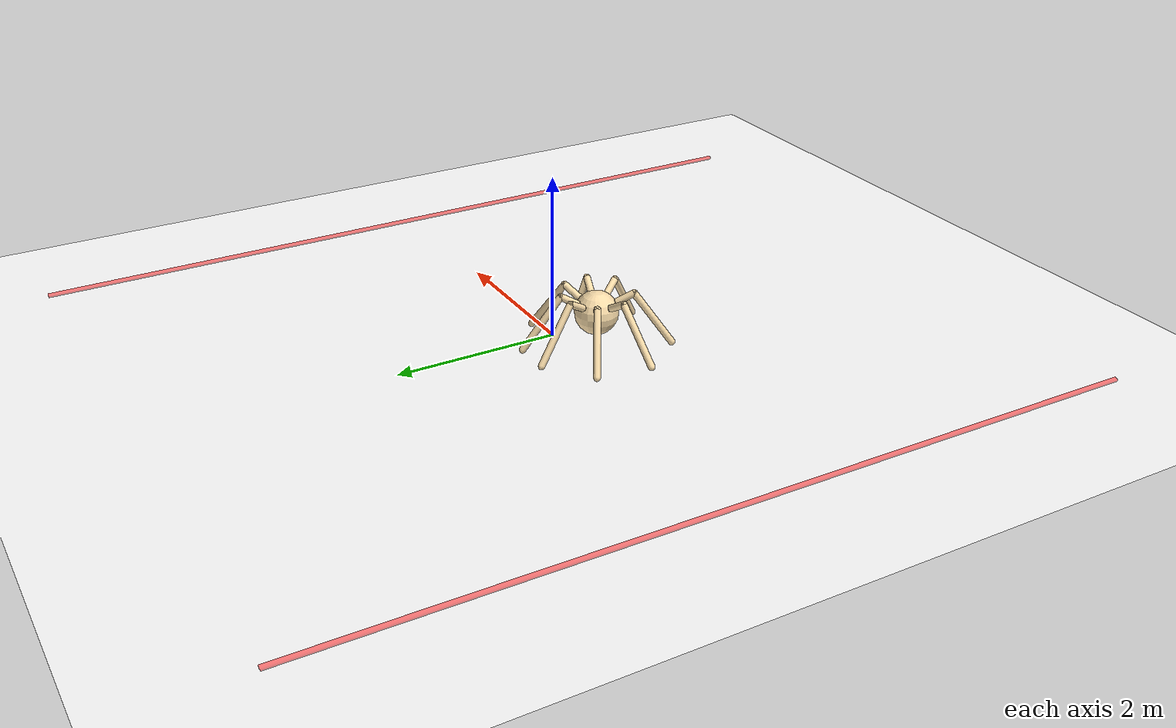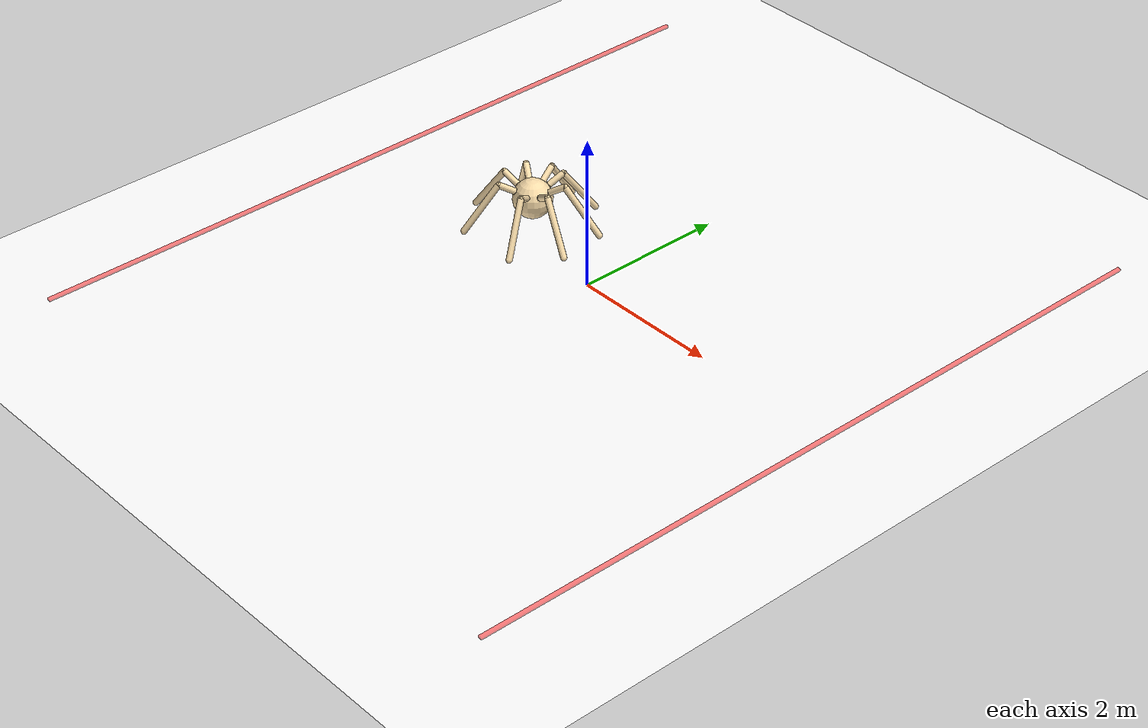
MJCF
<mujoco model="mutiagent_world">
  <compiler angle="degree" coordinate="local" inertiafromgeom="true" />

  <option integrator="RK4" timestep="0.003" solver="PGS" iterations="1000" />

  <default>
    <joint armature="1" damping="1" limited="true" />
  <default class="agent0"><geom conaffinity="0" condim="3" density="5.0" friction="1 0.5 0.5" margin="0.01" rgba="0.98 0.87 0.67 1" material="geom" contype="1" />
    <motor ctrllimited="true" ctrlrange="-1. 1." />
    <joint armature="1" damping="1" limited="true" />
  </default></default>

  <visual>
    <headlight ambient=".1 .1 .1" diffuse=".6 .6 .6" specular="0.3 0.3 0.3" />
    <map znear=".01" />
    <quality shadowsize="16384" />
  </visual>

  <asset>
    <texture builtin="gradient" height="100" rgb1=".4 .5 .6" rgb2="0 0 0" type="skybox" width="100" />
    <texture builtin="flat" height="1278" mark="cross" markrgb="0 0 0" name="texgeom" random="0.01" rgb1="0.8 0.6 0.4" rgb2="0.8 0.6 0.4" type="cube" width="127" />
    <texture builtin="checker" height="100" name="texplane" rgb1="0 0 0" rgb2="0.8 0.8 0.8" type="2d" width="100" />
    <texture name="MatPlane" type="2d" builtin="checker" rgb1=".5 .5 .5" rgb2=".5 .5 .5" width="300" height="300" mark="edge" markrgb="0.1 0.1 0.1" />
    <material name="MatPlane" texture="MatPlane" texrepeat="2 2" texuniform="true" reflectance=".2" />
    <material name="geom" texture="texgeom" texuniform="true" />
  </asset>

  <worldbody>
    <light cutoff="100" diffuse="1 1 1" dir="-0 0 -1.3" directional="true" exponent="1" pos="0 0 1.3" specular=".1 .1 .1" />
    <geom contype="1" conaffinity="1" friction="1 .1 .1" condim="3" material="MatPlane" name="floor" pos="0 0 0" rgba="1 1 1 1" size="20 20 0.125" type="plane" />
    <geom fromto="4 -5 0  4 +5 0" name="rightgoal" rgba="1 0 0 0.5" size=".03" type="cylinder" />
    <geom fromto="-4 -5 0  -4 +5 0" name="leftgoal" rgba="1 0 0 0.5" size=".03" type="cylinder" />
  <body name="agent0/0" pos="-1 0 0.75">
      <geom pos="0 0 0" size="0.25" type="sphere" class="agent0" name="agent0/anon5241642846" />
      <joint armature="0" damping="0" limited="false" margin="0.01" name="agent0/0_joint" pos="0 0 0" type="free" />

      <body name="agent0/1" pos="0 0 0">
        <geom density="5.0" fromto="0 0 0 -0.056 0.209 0.125" size="0.04" type="capsule" class="agent0" name="agent0/anon2128424572" />
        <body name="agent0/11" pos="-0.056 0.209 0.125">
          <joint axis="0 0 1" name="agent0/11_joint" pos="0 0 0" range="-20 20" type="hinge" />
          <geom density="5.0" fromto="0 0 0 -0.050 0.188 0.113" size="0.04" type="capsule" class="agent0" name="agent0/anon9280282864" />
          <body name="agent0/111" pos="-0.050 0.188 0.113">
            <joint axis="0.97 0.26 0" name="agent0/111_joint" pos="0 0 0" range="-35 45" type="hinge" />
            <geom density="5.0" fromto="0 0 0 -0.112 0.418 -0.600" size="0.04" type="capsule" class="agent0" name="agent0/anon7803755790" />
          </body>
        </body>
      </body>

      <body name="agent0/2" pos="0 0 0">
        <geom density="5.0" fromto="0 0 0 0.056 0.209 0.125" size="0.04" type="capsule" class="agent0" name="agent0/anon9186754802" />
        <body name="agent0/12" pos="0.056 0.209 0.125">
          <joint axis="0 0 1" name="agent0/12_joint" pos="0 0 0" range="-20 20" type="hinge" />
          <geom density="5.0" fromto="0 0 0 0.050 0.188 0.113" name="agent0/back_left_leg_geom" size="0.04" type="capsule" class="agent0" />
          <body name="agent0/112" pos="0.050 0.188 0.113">
            <joint axis="-0.97 0.26 0" name="agent0/112_joint" pos="0 0 0" range="-45 35" type="hinge" />
            <geom density="5.0" fromto="0 0 0 0.112 0.418 -0.600" name="agent0/back_left_ankle_geom" size="0.04" type="capsule" class="agent0" />
          </body>
        </body>
      </body>

      <body name="agent0/3" pos="0 0 0">
        <geom density="5.0" fromto="0 0 0 -0.188 0.108 0.125" name="agent0/aux_3_geom" size="0.04" type="capsule" class="agent0" />
        <body name="agent0/13" pos="-0.188 0.108 0.125">
          <joint axis="0 0 1" name="agent0/13_joint" pos="0 0 0" range="-20 20" type="hinge" />
          <geom density="5.0" fromto="0 0 0 -0.170 0.097 0.113" name="agent0/middle_back_right_leg_geom" size="0.04" type="capsule" class="agent0" />
          <body name="agent0/113" pos="-0.170 0.097 0.113">
            <joint axis="0.50 0.87 0" name="agent0/113_joint" pos="0 0 0" range="-35 45" type="hinge" />
            <geom density="5.0" fromto="0 0 0 -0.376 0.216 -0.600" name="agent0/middle_back_right_ankle_geom" size="0.04" type="capsule" class="agent0" />
          </body>
        </body>
      </body>

      <body name="agent0/4" pos="0 0 0">
        <geom density="5.0" fromto="0 0 0 0.188 0.108 0.125" name="agent0/aux_4_geom" size="0.04" type="capsule" class="agent0" />
        <body name="agent0/14" pos="0.188 0.108 0.125">
          <joint axis="0 0 1" name="agent0/14_joint" pos="0 0 0" range="-20 20" type="hinge" />
          <geom density="5.0" fromto="0 0 0 0.170 0.097 0.113" name="agent0/middle_back_left_leg_geom" size="0.04" type="capsule" class="agent0" />
          <body name="agent0/114" pos="0.170 0.097 0.113">
            <joint axis="-0.50 0.87 0" name="agent0/114_joint" pos="0 0 0" range="-45 35" type="hinge" />
            <geom density="5.0" fromto="0 0 0 0.376 0.216 -0.600" name="agent0/middle_back_left_ankle_geom" size="0.04" type="capsule" class="agent0" />
          </body>
        </body>
      </body>

      <body name="agent0/5" pos="0 0 0">
        <geom density="5.0" fromto="0 0 0 -0.209 -0.056 0.125" name="agent0/aux_5_geom" size="0.04" type="capsule" class="agent0" />
        <body name="agent0/15" pos="-0.209 -0.056 0.125">
          <joint axis="0 0 1" name="agent0/15_joint" pos="0 0 0" range="-20 20" type="hinge" />
          <geom density="5.0" fromto="0 0 0 -0.188 -0.050 0.113" name="agent0/middle_front_right_leg_geom" size="0.04" type="capsule" class="agent0" />
          <body name="agent0/115" pos="-0.188 -0.050 0.113">
            <joint axis="-0.26 0.97 0" name="agent0/115_joint" pos="0 0 0" range="-35 45" type="hinge" />
            <geom density="5.0" fromto="0 0 0 -0.418 -0.112 -0.600" name="agent0/middle_front_right_ankle_geom" size="0.04" type="capsule" class="agent0" />
          </body>
        </body>
      </body>

      <body name="agent0/6" pos="0 0 0">
        <geom density="5.0" fromto="0 0 0 0.209 -0.056 0.125" name="agent0/aux_6_geom" size="0.04" type="capsule" class="agent0" />
        <body name="agent0/16" pos="0.209 -0.056 0.125">
          <joint axis="0 0 1" name="agent0/16_joint" pos="0 0 0" range="-20 20" type="hinge" />
          <geom density="5.0" fromto="0 0 0 0.188 -0.050 0.113" name="agent0/middle_front_left_leg_geom" size="0.04" type="capsule" class="agent0" />
          <body name="agent0/116" pos="0.188 -0.050 0.113">
            <joint axis="0.26 0.97 0" name="agent0/116_joint" pos="0 0 0" range="-45 35" type="hinge" />
            <geom density="5.0" fromto="0 0 0 0.418 -0.112 -0.600" name="agent0/middle_front_left_ankle_geom" size="0.04" type="capsule" class="agent0" />
          </body>
        </body>
      </body>

      <body name="agent0/7" pos="0 0 0">
        <geom density="5.0" fromto="0 0 0 -0.108 -0.188 0.125" name="agent0/aux_7_geom" size="0.04" type="capsule" class="agent0" />
        <body name="agent0/17" pos="-0.108 -0.188 0.125">
          <joint axis="0 0 1" name="agent0/17_joint" pos="0 0 0" range="-20 20" type="hinge" />
          <geom density="5.0" fromto="0 0 0 -0.097 -0.170 0.113" name="agent0/front_right_leg_geom" size="0.04" type="capsule" class="agent0" />
          <body name="agent0/117" pos="-0.097 -0.170 0.113">
            <joint axis="-0.87 0.50 0" name="agent0/117_joint" pos="0 0 0" range="-35 45" type="hinge" />
            <geom density="5.0" fromto="0 0 0 -0.216 -0.376 -0.600" name="agent0/front_right_ankle_geom" size="0.04" type="capsule" class="agent0" />
          </body>
        </body>
      </body>

      <body name="agent0/8" pos="0 0 0">
        <geom density="5.0" fromto="0 0 0 0.108 -0.188 0.125" name="agent0/aux_8_geom" size="0.04" type="capsule" class="agent0" />
        <body name="agent0/18" pos="0.108 -0.188 0.125">
          <joint axis="0 0 1" name="agent0/18_joint" pos="0 0 0" range="-20 20" type="hinge" />
          <geom density="5.0" fromto="0 0 0 0.097 -0.170 0.113" name="agent0/front_left_leg_geom" size="0.04" type="capsule" class="agent0" />
          <body name="agent0/118" pos="0.097 -0.170 0.113">
            <joint axis="0.87 0.50 0" name="agent0/118_joint" pos="0 0 0" range="-45 35" type="hinge" />
            <geom density="5.0" fromto="0 0 0 0.216 -0.376 -0.600" name="agent0/front_left_ankle_geom" size="0.04" type="capsule" class="agent0" />
          </body>
        </body>
      </body>
    </body>

  </worldbody>
<actuator>

    <motor ctrllimited="true" ctrlrange="-1.0 1.0" joint="agent0/11_joint" gear="50" name="agent0/11_joint" class="agent0" />
    <motor ctrllimited="true" ctrlrange="-1.0 1.0" joint="agent0/111_joint" gear="50" name="agent0/111_joint" class="agent0" />
    <motor ctrllimited="true" ctrlrange="-1.0 1.0" joint="agent0/12_joint" gear="50" name="agent0/12_joint" class="agent0" />
    <motor ctrllimited="true" ctrlrange="-1.0 1.0" joint="agent0/112_joint" gear="50" name="agent0/112_joint" class="agent0" />
    <motor ctrllimited="true" ctrlrange="-1.0 1.0" joint="agent0/13_joint" gear="50" name="agent0/13_joint" class="agent0" />
    <motor ctrllimited="true" ctrlrange="-1.0 1.0" joint="agent0/113_joint" gear="50" name="agent0/113_joint" class="agent0" />
    <motor ctrllimited="true" ctrlrange="-1.0 1.0" joint="agent0/14_joint" gear="50" name="agent0/14_joint" class="agent0" />
    <motor ctrllimited="true" ctrlrange="-1.0 1.0" joint="agent0/114_joint" gear="50" name="agent0/114_joint" class="agent0" />
    <motor ctrllimited="true" ctrlrange="-1.0 1.0" joint="agent0/15_joint" gear="50" name="agent0/15_joint" class="agent0" />
    <motor ctrllimited="true" ctrlrange="-1.0 1.0" joint="agent0/115_joint" gear="50" name="agent0/115_joint" class="agent0" />
    <motor ctrllimited="true" ctrlrange="-1.0 1.0" joint="agent0/16_joint" gear="50" name="agent0/16_joint" class="agent0" />
    <motor ctrllimited="true" ctrlrange="-1.0 1.0" joint="agent0/116_joint" gear="50" name="agent0/116_joint" class="agent0" />
    <motor ctrllimited="true" ctrlrange="-1.0 1.0" joint="agent0/17_joint" gear="50" name="agent0/17_joint" class="agent0" />
    <motor ctrllimited="true" ctrlrange="-1.0 1.0" joint="agent0/117_joint" gear="50" name="agent0/117_joint" class="agent0" />
    <motor ctrllimited="true" ctrlrange="-1.0 1.0" joint="agent0/18_joint" gear="50" name="agent0/18_joint" class="agent0" />
    <motor ctrllimited="true" ctrlrange="-1.0 1.0" joint="agent0/118_joint" gear="50" name="agent0/118_joint" class="agent0" />
  </actuator>

</mujoco>
